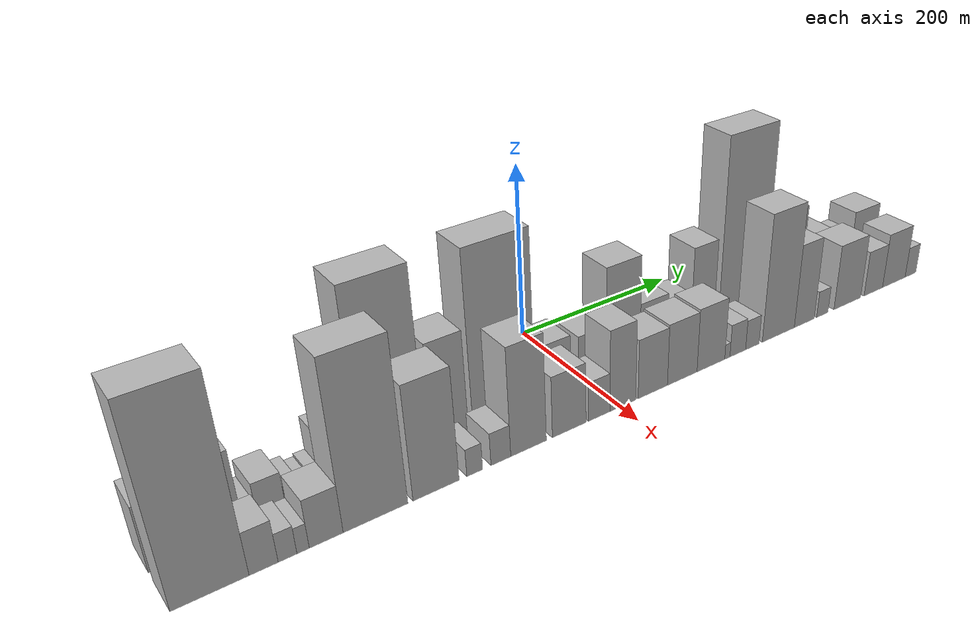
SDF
<sdf version="1.6">
 <world name="default">
  <scene>
   <sky><clouds><speed>12</speed></clouds></sky>
   <ambient>0.4 0.4 0.4 1</ambient>
   <background>0.7 0.7 0.7 1</background>
   <shadows>1</shadows>
  </scene>
  <gravity>0 0 -9.8066</gravity>
  <magnetic_field>6e-06 2.3e-05 -4.2e-05</magnetic_field>
  <physics default="0" name="default_physics" type="ode">
   <ode>
    <solver>
     <type>quick</type>
     <iters>10</iters>
     <sor>1.0</sor>
     <use_dynamic_moi_rescaling>0</use_dynamic_moi_rescaling>
    </solver>
    <constraints>
     <cfm>0</cfm>
     <erp>0.2</erp>
     <contact_max_correcting_vel>100</contact_max_correcting_vel>
     <contact_surface_layer>0.001</contact_surface_layer>
    </constraints>
   </ode>
   <max_step_size>0.004</max_step_size>
   <real_time_factor>1</real_time_factor>
   <real_time_update_rate>250</real_time_update_rate>
  </physics>
  <light name="sun" type="directional">
   <pose>0 0 10 0 0 0</pose>
   <diffuse>0.8 0.8 0.8 1</diffuse>
   <specular>0.2 0.2 0.2 1</specular>
   <attenuation>
    <range>1000</range>
    <constant>0.9</constant>
    <linear>0.01</linear>
    <quadratic>0.001</quadratic>
   </attenuation>
   <direction>-0.5 0.1 -0.9</direction>
  </light>
  <model name="building_1">
   <static>1</static>
   <pose>100.0000 -426.0865 0 0.000000 0.000000 0.000000</pose>
   <link name="link">
    <pose>0 0 34.50 0 0 0</pose>
    <collision name="collision"><geometry><box><size>40.0000 35.8269 69.0000</size></box></geometry></collision>
    <visual name="visual">
     <cast_shadows>0</cast_shadows>
     <geometry><box><size>40.0000 35.8269 69.0000</size></box></geometry>
     <material>
      <script>
       <uri>model://HANNAS_wall/materials/scripts</uri>
       <uri>model://HANNAS_wall/materials/textures</uri>
       <name>vrc/HANNAS_wall</name>
      </script>
     </material>
    </visual>
   </link>
  </model>
  <model name="building_2">
   <static>1</static>
   <pose>100.0000 -385.9030 0 0.000000 0.000000 0.000000</pose>
   <link name="link">
    <pose>0 0 43.50 0 0 0</pose>
    <collision name="collision"><geometry><box><size>40.0000 44.5402 87.0000</size></box></geometry></collision>
    <visual name="visual">
     <cast_shadows>0</cast_shadows>
     <geometry><box><size>40.0000 44.5402 87.0000</size></box></geometry>
     <material>
      <script>
       <uri>model://HANNAS_wall/materials/scripts</uri>
       <uri>model://HANNAS_wall/materials/textures</uri>
       <name>vrc/HANNAS_wall</name>
      </script>
     </material>
    </visual>
   </link>
  </model>
  <model name="building_3">
   <static>1</static>
   <pose>100.0000 -357.4554 0 0.000000 0.000000 0.000000</pose>
   <link name="link">
    <pose>0 0 13.50 0 0 0</pose>
    <collision name="collision"><geometry><box><size>40.0000 12.3551 27.0000</size></box></geometry></collision>
    <visual name="visual">
     <cast_shadows>0</cast_shadows>
     <geometry><box><size>40.0000 12.3551 27.0000</size></box></geometry>
     <material>
      <script>
       <uri>model://HANNAS_wall/materials/scripts</uri>
       <uri>model://HANNAS_wall/materials/textures</uri>
       <name>vrc/HANNAS_wall</name>
      </script>
     </material>
    </visual>
   </link>
  </model>
  <model name="building_4">
   <static>1</static>
   <pose>100.0000 -338.4898 0 0.000000 0.000000 0.000000</pose>
   <link name="link">
    <pose>0 0 22.50 0 0 0</pose>
    <collision name="collision"><geometry><box><size>40.0000 25.5759 45.0000</size></box></geometry></collision>
    <visual name="visual">
     <cast_shadows>0</cast_shadows>
     <geometry><box><size>40.0000 25.5759 45.0000</size></box></geometry>
     <material>
      <script>
       <uri>model://HANNAS_wall/materials/scripts</uri>
       <uri>model://HANNAS_wall/materials/textures</uri>
       <name>vrc/HANNAS_wall</name>
      </script>
     </material>
    </visual>
   </link>
  </model>
  <model name="building_5">
   <static>1</static>
   <pose>100.0000 -318.1940 0 0.000000 0.000000 0.000000</pose>
   <link name="link">
    <pose>0 0 15.00 0 0 0</pose>
    <collision name="collision"><geometry><box><size>40.0000 15.0158 30.0000</size></box></geometry></collision>
    <visual name="visual">
     <cast_shadows>0</cast_shadows>
     <geometry><box><size>40.0000 15.0158 30.0000</size></box></geometry>
     <material>
      <script>
       <uri>model://HANNAS_wall/materials/scripts</uri>
       <uri>model://HANNAS_wall/materials/textures</uri>
       <name>vrc/HANNAS_wall</name>
      </script>
     </material>
    </visual>
   </link>
  </model>
  <model name="building_6">
   <static>1</static>
   <pose>100.0000 -304.9111 0 0.000000 0.000000 0.000000</pose>
   <link name="link">
    <pose>0 0 12.00 0 0 0</pose>
    <collision name="collision"><geometry><box><size>40.0000 11.5500 24.0000</size></box></geometry></collision>
    <visual name="visual">
     <cast_shadows>0</cast_shadows>
     <geometry><box><size>40.0000 11.5500 24.0000</size></box></geometry>
     <material>
      <script>
       <uri>model://HANNAS_wall/materials/scripts</uri>
       <uri>model://HANNAS_wall/materials/textures</uri>
       <name>vrc/HANNAS_wall</name>
      </script>
     </material>
    </visual>
   </link>
  </model>
  <model name="building_7">
   <static>1</static>
   <pose>100.0000 -293.5560 0 0.000000 0.000000 0.000000</pose>
   <link name="link">
    <pose>0 0 13.50 0 0 0</pose>
    <collision name="collision"><geometry><box><size>40.0000 11.1602 27.0000</size></box></geometry></collision>
    <visual name="visual">
     <cast_shadows>0</cast_shadows>
     <geometry><box><size>40.0000 11.1602 27.0000</size></box></geometry>
     <material>
      <script>
       <uri>model://HANNAS_wall/materials/scripts</uri>
       <uri>model://HANNAS_wall/materials/textures</uri>
       <name>vrc/HANNAS_wall</name>
      </script>
     </material>
    </visual>
   </link>
  </model>
  <model name="building_8">
   <static>1</static>
   <pose>100.0000 -270.8643 0 0.000000 0.000000 0.000000</pose>
   <link name="link">
    <pose>0 0 31.50 0 0 0</pose>
    <collision name="collision"><geometry><box><size>40.0000 34.2231 63.0000</size></box></geometry></collision>
    <visual name="visual">
     <cast_shadows>0</cast_shadows>
     <geometry><box><size>40.0000 34.2231 63.0000</size></box></geometry>
     <material>
      <script>
       <uri>model://HANNAS_wall/materials/scripts</uri>
       <uri>model://HANNAS_wall/materials/textures</uri>
       <name>vrc/HANNAS_wall</name>
      </script>
     </material>
    </visual>
   </link>
  </model>
  <model name="building_9">
   <static>1</static>
   <pose>100.0000 -221.0748 0 0.000000 0.000000 0.000000</pose>
   <link name="link">
    <pose>0 0 100.50 0 0 0</pose>
    <collision name="collision"><geometry><box><size>40.0000 65.3559 201.0000</size></box></geometry></collision>
    <visual name="visual">
     <cast_shadows>0</cast_shadows>
     <geometry><box><size>40.0000 65.3559 201.0000</size></box></geometry>
     <material>
      <script>
       <uri>model://HANNAS_wall/materials/scripts</uri>
       <uri>model://HANNAS_wall/materials/textures</uri>
       <name>vrc/HANNAS_wall</name>
      </script>
     </material>
    </visual>
   </link>
  </model>
  <model name="building_10">
   <static>1</static>
   <pose>100.0000 -162.0557 0 0.000000 0.000000 0.000000</pose>
   <link name="link">
    <pose>0 0 58.50 0 0 0</pose>
    <collision name="collision"><geometry><box><size>40.0000 38.6823 117.0000</size></box></geometry></collision>
    <visual name="visual">
     <cast_shadows>0</cast_shadows>
     <geometry><box><size>40.0000 38.6823 117.0000</size></box></geometry>
     <material>
      <script>
       <uri>model://HANNAS_wall/materials/scripts</uri>
       <uri>model://HANNAS_wall/materials/textures</uri>
       <name>vrc/HANNAS_wall</name>
      </script>
     </material>
    </visual>
   </link>
  </model>
  <model name="building_11">
   <static>1</static>
   <pose>100.0000 -101.9497 0 0.000000 0.000000 0.000000</pose>
   <link name="link">
    <pose>0 0 99.00 0 0 0</pose>
    <collision name="collision"><geometry><box><size>40.0000 71.5297 198.0000</size></box></geometry></collision>
    <visual name="visual">
     <cast_shadows>0</cast_shadows>
     <geometry><box><size>40.0000 71.5297 198.0000</size></box></geometry>
     <material>
      <script>
       <uri>model://HANNAS_wall/materials/scripts</uri>
       <uri>model://HANNAS_wall/materials/textures</uri>
       <name>vrc/HANNAS_wall</name>
      </script>
     </material>
    </visual>
   </link>
  </model>
  <model name="building_12">
   <static>1</static>
   <pose>100.0000 -39.8804 0 0.000000 0.000000 0.000000</pose>
   <link name="link">
    <pose>0 0 33.00 0 0 0</pose>
    <collision name="collision"><geometry><box><size>40.0000 34.6090 66.0000</size></box></geometry></collision>
    <visual name="visual">
     <cast_shadows>0</cast_shadows>
     <geometry><box><size>40.0000 34.6090 66.0000</size></box></geometry>
     <material>
      <script>
       <uri>model://HANNAS_wall/materials/scripts</uri>
       <uri>model://HANNAS_wall/materials/textures</uri>
       <name>vrc/HANNAS_wall</name>
      </script>
     </material>
    </visual>
   </link>
  </model>
  <model name="building_13">
   <static>1</static>
   <pose>100.0000 4.9502 0 0.000000 0.000000 0.000000</pose>
   <link name="link">
    <pose>0 0 30.00 0 0 0</pose>
    <collision name="collision"><geometry><box><size>40.0000 35.0523 60.0000</size></box></geometry></collision>
    <visual name="visual">
     <cast_shadows>0</cast_shadows>
     <geometry><box><size>40.0000 35.0523 60.0000</size></box></geometry>
     <material>
      <script>
       <uri>model://HANNAS_wall/materials/scripts</uri>
       <uri>model://HANNAS_wall/materials/textures</uri>
       <name>vrc/HANNAS_wall</name>
      </script>
     </material>
    </visual>
   </link>
  </model>
  <model name="building_14">
   <static>1</static>
   <pose>100.0000 44.7409 0 0.000000 0.000000 0.000000</pose>
   <link name="link">
    <pose>0 0 63.00 0 0 0</pose>
    <collision name="collision"><geometry><box><size>40.0000 44.5290 126.0000</size></box></geometry></collision>
    <visual name="visual">
     <cast_shadows>0</cast_shadows>
     <geometry><box><size>40.0000 44.5290 126.0000</size></box></geometry>
     <material>
      <script>
       <uri>model://HANNAS_wall/materials/scripts</uri>
       <uri>model://HANNAS_wall/materials/textures</uri>
       <name>vrc/HANNAS_wall</name>
      </script>
     </material>
    </visual>
   </link>
  </model>
  <model name="building_15">
   <static>1</static>
   <pose>100.0000 85.7676 0 0.000000 0.000000 0.000000</pose>
   <link name="link">
    <pose>0 0 34.50 0 0 0</pose>
    <collision name="collision"><geometry><box><size>40.0000 37.5246 69.0000</size></box></geometry></collision>
    <visual name="visual">
     <cast_shadows>0</cast_shadows>
     <geometry><box><size>40.0000 37.5246 69.0000</size></box></geometry>
     <material>
      <script>
       <uri>model://HANNAS_wall/materials/scripts</uri>
       <uri>model://HANNAS_wall/materials/textures</uri>
       <name>vrc/HANNAS_wall</name>
      </script>
     </material>
    </visual>
   </link>
  </model>
  <model name="building_16">
   <static>1</static>
   <pose>100.0000 123.3544 0 0.000000 0.000000 0.000000</pose>
   <link name="link">
    <pose>0 0 28.50 0 0 0</pose>
    <collision name="collision"><geometry><box><size>40.0000 29.6488 57.0000</size></box></geometry></collision>
    <visual name="visual">
     <cast_shadows>0</cast_shadows>
     <geometry><box><size>40.0000 29.6488 57.0000</size></box></geometry>
     <material>
      <script>
       <uri>model://HANNAS_wall/materials/scripts</uri>
       <uri>model://HANNAS_wall/materials/textures</uri>
       <name>vrc/HANNAS_wall</name>
      </script>
     </material>
    </visual>
   </link>
  </model>
  <model name="building_17">
   <static>1</static>
   <pose>100.0000 155.0574 0 0.000000 0.000000 0.000000</pose>
   <link name="link">
    <pose>0 0 55.50 0 0 0</pose>
    <collision name="collision"><geometry><box><size>40.0000 33.7574 111.0000</size></box></geometry></collision>
    <visual name="visual">
     <cast_shadows>0</cast_shadows>
     <geometry><box><size>40.0000 33.7574 111.0000</size></box></geometry>
     <material>
      <script>
       <uri>model://HANNAS_wall/materials/scripts</uri>
       <uri>model://HANNAS_wall/materials/textures</uri>
       <name>vrc/HANNAS_wall</name>
      </script>
     </material>
    </visual>
   </link>
  </model>
  <model name="building_18">
   <static>1</static>
   <pose>100.0000 213.8398 0 0.000000 0.000000 0.000000</pose>
   <link name="link">
    <pose>0 0 112.50 0 0 0</pose>
    <collision name="collision"><geometry><box><size>40.0000 69.8074 225.0000</size></box></geometry></collision>
    <visual name="visual">
     <cast_shadows>0</cast_shadows>
     <geometry><box><size>40.0000 69.8074 225.0000</size></box></geometry>
     <material>
      <script>
       <uri>model://HANNAS_wall/materials/scripts</uri>
       <uri>model://HANNAS_wall/materials/textures</uri>
       <name>vrc/HANNAS_wall</name>
      </script>
     </material>
    </visual>
   </link>
  </model>
  <model name="building_19">
   <static>1</static>
   <pose>100.0000 257.7126 0 0.000000 0.000000 0.000000</pose>
   <link name="link">
    <pose>0 0 15.00 0 0 0</pose>
    <collision name="collision"><geometry><box><size>40.0000 17.9382 30.0000</size></box></geometry></collision>
    <visual name="visual">
     <cast_shadows>0</cast_shadows>
     <geometry><box><size>40.0000 17.9382 30.0000</size></box></geometry>
     <material>
      <script>
       <uri>model://HANNAS_wall/materials/scripts</uri>
       <uri>model://HANNAS_wall/materials/textures</uri>
       <name>vrc/HANNAS_wall</name>
      </script>
     </material>
    </visual>
   </link>
  </model>
  <model name="building_20">
   <static>1</static>
   <pose>100.0000 289.8383 0 0.000000 0.000000 0.000000</pose>
   <link name="link">
    <pose>0 0 55.50 0 0 0</pose>
    <collision name="collision"><geometry><box><size>40.0000 38.3132 111.0000</size></box></geometry></collision>
    <visual name="visual">
     <cast_shadows>0</cast_shadows>
     <geometry><box><size>40.0000 38.3132 111.0000</size></box></geometry>
     <material>
      <script>
       <uri>model://HANNAS_wall/materials/scripts</uri>
       <uri>model://HANNAS_wall/materials/textures</uri>
       <name>vrc/HANNAS_wall</name>
      </script>
     </material>
    </visual>
   </link>
  </model>
  <model name="building_21">
   <static>1</static>
   <pose>100.0000 334.4318 0 0.000000 0.000000 0.000000</pose>
   <link name="link">
    <pose>0 0 34.50 0 0 0</pose>
    <collision name="collision"><geometry><box><size>40.0000 40.8740 69.0000</size></box></geometry></collision>
    <visual name="visual">
     <cast_shadows>0</cast_shadows>
     <geometry><box><size>40.0000 40.8740 69.0000</size></box></geometry>
     <material>
      <script>
       <uri>model://HANNAS_wall/materials/scripts</uri>
       <uri>model://HANNAS_wall/materials/textures</uri>
       <name>vrc/HANNAS_wall</name>
      </script>
     </material>
    </visual>
   </link>
  </model>
  <model name="building_22">
   <static>1</static>
   <pose>100.0000 378.5405 0 0.000000 0.000000 0.000000</pose>
   <link name="link">
    <pose>0 0 27.00 0 0 0</pose>
    <collision name="collision"><geometry><box><size>40.0000 29.3434 54.0000</size></box></geometry></collision>
    <visual name="visual">
     <cast_shadows>0</cast_shadows>
     <geometry><box><size>40.0000 29.3434 54.0000</size></box></geometry>
     <material>
      <script>
       <uri>model://HANNAS_wall/materials/scripts</uri>
       <uri>model://HANNAS_wall/materials/textures</uri>
       <name>vrc/HANNAS_wall</name>
      </script>
     </material>
    </visual>
   </link>
  </model>
  <model name="building_23">
   <static>1</static>
   <pose>100.0000 414.9408 0 0.000000 0.000000 0.000000</pose>
   <link name="link">
    <pose>0 0 39.00 0 0 0</pose>
    <collision name="collision"><geometry><box><size>40.0000 43.4571 78.0000</size></box></geometry></collision>
    <visual name="visual">
     <cast_shadows>0</cast_shadows>
     <geometry><box><size>40.0000 43.4571 78.0000</size></box></geometry>
     <material>
      <script>
       <uri>model://HANNAS_wall/materials/scripts</uri>
       <uri>model://HANNAS_wall/materials/textures</uri>
       <name>vrc/HANNAS_wall</name>
      </script>
     </material>
    </visual>
   </link>
  </model>
  <model name="building_24">
   <static>1</static>
   <pose>100.0000 440.6839 0 0.000000 0.000000 0.000000</pose>
   <link name="link">
    <pose>0 0 9.00 0 0 0</pose>
    <collision name="collision"><geometry><box><size>40.0000 8.0292 18.0000</size></box></geometry></collision>
    <visual name="visual">
     <cast_shadows>0</cast_shadows>
     <geometry><box><size>40.0000 8.0292 18.0000</size></box></geometry>
     <material>
      <script>
       <uri>model://HANNAS_wall/materials/scripts</uri>
       <uri>model://HANNAS_wall/materials/textures</uri>
       <name>vrc/HANNAS_wall</name>
      </script>
     </material>
    </visual>
   </link>
  </model>
  <model name="building_25">
   <static>1</static>
   <pose>152.0000 -412.1984 0 0.000000 0.000000 0.000000</pose>
   <link name="link">
    <pose>0 0 100.50 0 0 0</pose>
    <collision name="collision"><geometry><box><size>40.0000 63.6033 201.0000</size></box></geometry></collision>
    <visual name="visual">
     <cast_shadows>0</cast_shadows>
     <geometry><box><size>40.0000 63.6033 201.0000</size></box></geometry>
     <material>
      <script>
       <uri>model://HANNAS_wall/materials/scripts</uri>
       <uri>model://HANNAS_wall/materials/textures</uri>
       <name>vrc/HANNAS_wall</name>
      </script>
     </material>
    </visual>
   </link>
  </model>
  <model name="building_26">
   <static>1</static>
   <pose>152.0000 -368.0824 0 0.000000 0.000000 0.000000</pose>
   <link name="link">
    <pose>0 0 22.50 0 0 0</pose>
    <collision name="collision"><geometry><box><size>40.0000 24.6286 45.0000</size></box></geometry></collision>
    <visual name="visual">
     <cast_shadows>0</cast_shadows>
     <geometry><box><size>40.0000 24.6286 45.0000</size></box></geometry>
     <material>
      <script>
       <uri>model://HANNAS_wall/materials/scripts</uri>
       <uri>model://HANNAS_wall/materials/textures</uri>
       <name>vrc/HANNAS_wall</name>
      </script>
     </material>
    </visual>
   </link>
  </model>
  <model name="building_27">
   <static>1</static>
   <pose>152.0000 -347.6256 0 0.000000 0.000000 0.000000</pose>
   <link name="link">
    <pose>0 0 15.00 0 0 0</pose>
    <collision name="collision"><geometry><box><size>40.0000 16.2850 30.0000</size></box></geometry></collision>
    <visual name="visual">
     <cast_shadows>0</cast_shadows>
     <geometry><box><size>40.0000 16.2850 30.0000</size></box></geometry>
     <material>
      <script>
       <uri>model://HANNAS_wall/materials/scripts</uri>
       <uri>model://HANNAS_wall/materials/textures</uri>
       <name>vrc/HANNAS_wall</name>
      </script>
     </material>
    </visual>
   </link>
  </model>
  <model name="building_28">
   <static>1</static>
   <pose>152.0000 -334.0634 0 0.000000 0.000000 0.000000</pose>
   <link name="link">
    <pose>0 0 13.50 0 0 0</pose>
    <collision name="collision"><geometry><box><size>40.0000 10.8394 27.0000</size></box></geometry></collision>
    <visual name="visual">
     <cast_shadows>0</cast_shadows>
     <geometry><box><size>40.0000 10.8394 27.0000</size></box></geometry>
     <material>
      <script>
       <uri>model://HANNAS_wall/materials/scripts</uri>
       <uri>model://HANNAS_wall/materials/textures</uri>
       <name>vrc/HANNAS_wall</name>
      </script>
     </material>
    </visual>
   </link>
  </model>
  <model name="building_29">
   <static>1</static>
   <pose>152.0000 -313.3480 0 0.000000 0.000000 0.000000</pose>
   <link name="link">
    <pose>0 0 25.50 0 0 0</pose>
    <collision name="collision"><geometry><box><size>40.0000 30.5914 51.0000</size></box></geometry></collision>
    <visual name="visual">
     <cast_shadows>0</cast_shadows>
     <geometry><box><size>40.0000 30.5914 51.0000</size></box></geometry>
     <material>
      <script>
       <uri>model://HANNAS_wall/materials/scripts</uri>
       <uri>model://HANNAS_wall/materials/textures</uri>
       <name>vrc/HANNAS_wall</name>
      </script>
     </material>
    </visual>
   </link>
  </model>
  <model name="building_30">
   <static>1</static>
   <pose>152.0000 -267.3027 0 0.000000 0.000000 0.000000</pose>
   <link name="link">
    <pose>0 0 88.50 0 0 0</pose>
    <collision name="collision"><geometry><box><size>40.0000 61.4992 177.0000</size></box></geometry></collision>
    <visual name="visual">
     <cast_shadows>0</cast_shadows>
     <geometry><box><size>40.0000 61.4992 177.0000</size></box></geometry>
     <material>
      <script>
       <uri>model://HANNAS_wall/materials/scripts</uri>
       <uri>model://HANNAS_wall/materials/textures</uri>
       <name>vrc/HANNAS_wall</name>
      </script>
     </material>
    </visual>
   </link>
  </model>
  <model name="building_31">
   <static>1</static>
   <pose>152.0000 -208.0971 0 0.000000 0.000000 0.000000</pose>
   <link name="link">
    <pose>0 0 61.50 0 0 0</pose>
    <collision name="collision"><geometry><box><size>40.0000 46.9122 123.0000</size></box></geometry></collision>
    <visual name="visual">
     <cast_shadows>0</cast_shadows>
     <geometry><box><size>40.0000 46.9122 123.0000</size></box></geometry>
     <material>
      <script>
       <uri>model://HANNAS_wall/materials/scripts</uri>
       <uri>model://HANNAS_wall/materials/textures</uri>
       <name>vrc/HANNAS_wall</name>
      </script>
     </material>
    </visual>
   </link>
  </model>
  <model name="building_32">
   <static>1</static>
   <pose>152.0000 -168.2520 0 0.000000 0.000000 0.000000</pose>
   <link name="link">
    <pose>0 0 15.00 0 0 0</pose>
    <collision name="collision"><geometry><box><size>40.0000 16.7779 30.0000</size></box></geometry></collision>
    <visual name="visual">
     <cast_shadows>0</cast_shadows>
     <geometry><box><size>40.0000 16.7779 30.0000</size></box></geometry>
     <material>
      <script>
       <uri>model://HANNAS_wall/materials/scripts</uri>
       <uri>model://HANNAS_wall/materials/textures</uri>
       <name>vrc/HANNAS_wall</name>
      </script>
     </material>
    </visual>
   </link>
  </model>
  <model name="building_33">
   <static>1</static>
   <pose>152.0000 -140.0718 0 0.000000 0.000000 0.000000</pose>
   <link name="link">
    <pose>0 0 18.00 0 0 0</pose>
    <collision name="collision"><geometry><box><size>40.0000 21.5826 36.0000</size></box></geometry></collision>
    <visual name="visual">
     <cast_shadows>0</cast_shadows>
     <geometry><box><size>40.0000 21.5826 36.0000</size></box></geometry>
     <material>
      <script>
       <uri>model://HANNAS_wall/materials/scripts</uri>
       <uri>model://HANNAS_wall/materials/textures</uri>
       <name>vrc/HANNAS_wall</name>
      </script>
     </material>
    </visual>
   </link>
  </model>
  <model name="building_34">
   <static>1</static>
   <pose>152.0000 -109.2044 0 0.000000 0.000000 0.000000</pose>
   <link name="link">
    <pose>0 0 60.00 0 0 0</pose>
    <collision name="collision"><geometry><box><size>40.0000 40.1522 120.0000</size></box></geometry></collision>
    <visual name="visual">
     <cast_shadows>0</cast_shadows>
     <geometry><box><size>40.0000 40.1522 120.0000</size></box></geometry>
     <material>
      <script>
       <uri>model://HANNAS_wall/materials/scripts</uri>
       <uri>model://HANNAS_wall/materials/textures</uri>
       <name>vrc/HANNAS_wall</name>
      </script>
     </material>
    </visual>
   </link>
  </model>
  <model name="building_35">
   <static>1</static>
   <pose>152.0000 -62.2187 0 0.000000 0.000000 0.000000</pose>
   <link name="link">
    <pose>0 0 34.50 0 0 0</pose>
    <collision name="collision"><geometry><box><size>40.0000 39.8193 69.0000</size></box></geometry></collision>
    <visual name="visual">
     <cast_shadows>0</cast_shadows>
     <geometry><box><size>40.0000 39.8193 69.0000</size></box></geometry>
     <material>
      <script>
       <uri>model://HANNAS_wall/materials/scripts</uri>
       <uri>model://HANNAS_wall/materials/textures</uri>
       <name>vrc/HANNAS_wall</name>
      </script>
     </material>
    </visual>
   </link>
  </model>
  <model name="building_36">
   <static>1</static>
   <pose>152.0000 -26.1796 0 0.000000 0.000000 0.000000</pose>
   <link name="link">
    <pose>0 0 22.50 0 0 0</pose>
    <collision name="collision"><geometry><box><size>40.0000 26.2588 45.0000</size></box></geometry></collision>
    <visual name="visual">
     <cast_shadows>0</cast_shadows>
     <geometry><box><size>40.0000 26.2588 45.0000</size></box></geometry>
     <material>
      <script>
       <uri>model://HANNAS_wall/materials/scripts</uri>
       <uri>model://HANNAS_wall/materials/textures</uri>
       <name>vrc/HANNAS_wall</name>
      </script>
     </material>
    </visual>
   </link>
  </model>
  <model name="building_37">
   <static>1</static>
   <pose>152.0000 3.2411 0 0.000000 0.000000 0.000000</pose>
   <link name="link">
    <pose>0 0 46.50 0 0 0</pose>
    <collision name="collision"><geometry><box><size>40.0000 32.5826 93.0000</size></box></geometry></collision>
    <visual name="visual">
     <cast_shadows>0</cast_shadows>
     <geometry><box><size>40.0000 32.5826 93.0000</size></box></geometry>
     <material>
      <script>
       <uri>model://HANNAS_wall/materials/scripts</uri>
       <uri>model://HANNAS_wall/materials/textures</uri>
       <name>vrc/HANNAS_wall</name>
      </script>
     </material>
    </visual>
   </link>
  </model>
  <model name="building_38">
   <static>1</static>
   <pose>152.0000 41.7942 0 0.000000 0.000000 0.000000</pose>
   <link name="link">
    <pose>0 0 34.50 0 0 0</pose>
    <collision name="collision"><geometry><box><size>40.0000 38.5236 69.0000</size></box></geometry></collision>
    <visual name="visual">
     <cast_shadows>0</cast_shadows>
     <geometry><box><size>40.0000 38.5236 69.0000</size></box></geometry>
     <material>
      <script>
       <uri>model://HANNAS_wall/materials/scripts</uri>
       <uri>model://HANNAS_wall/materials/textures</uri>
       <name>vrc/HANNAS_wall</name>
      </script>
     </material>
    </visual>
   </link>
  </model>
  <model name="building_39">
   <static>1</static>
   <pose>152.0000 81.2399 0 0.000000 0.000000 0.000000</pose>
   <link name="link">
    <pose>0 0 36.00 0 0 0</pose>
    <collision name="collision"><geometry><box><size>40.0000 40.3678 72.0000</size></box></geometry></collision>
    <visual name="visual">
     <cast_shadows>0</cast_shadows>
     <geometry><box><size>40.0000 40.3678 72.0000</size></box></geometry>
     <material>
      <script>
       <uri>model://HANNAS_wall/materials/scripts</uri>
       <uri>model://HANNAS_wall/materials/textures</uri>
       <name>vrc/HANNAS_wall</name>
      </script>
     </material>
    </visual>
   </link>
  </model>
  <model name="building_40">
   <static>1</static>
   <pose>152.0000 121.0293 0 0.000000 0.000000 0.000000</pose>
   <link name="link">
    <pose>0 0 37.50 0 0 0</pose>
    <collision name="collision"><geometry><box><size>40.0000 39.2111 75.0000</size></box></geometry></collision>
    <visual name="visual">
     <cast_shadows>0</cast_shadows>
     <geometry><box><size>40.0000 39.2111 75.0000</size></box></geometry>
     <material>
      <script>
       <uri>model://HANNAS_wall/materials/scripts</uri>
       <uri>model://HANNAS_wall/materials/textures</uri>
       <name>vrc/HANNAS_wall</name>
      </script>
     </material>
    </visual>
   </link>
  </model>
  <model name="building_41">
   <static>1</static>
   <pose>152.0000 144.3680 0 0.000000 0.000000 0.000000</pose>
   <link name="link">
    <pose>0 0 9.00 0 0 0</pose>
    <collision name="collision"><geometry><box><size>40.0000 7.4662 18.0000</size></box></geometry></collision>
    <visual name="visual">
     <cast_shadows>0</cast_shadows>
     <geometry><box><size>40.0000 7.4662 18.0000</size></box></geometry>
     <material>
      <script>
       <uri>model://HANNAS_wall/materials/scripts</uri>
       <uri>model://HANNAS_wall/materials/textures</uri>
       <name>vrc/HANNAS_wall</name>
      </script>
     </material>
    </visual>
   </link>
  </model>
  <model name="building_42">
   <static>1</static>
   <pose>152.0000 159.5786 0 0.000000 0.000000 0.000000</pose>
   <link name="link">
    <pose>0 0 19.50 0 0 0</pose>
    <collision name="collision"><geometry><box><size>40.0000 22.9551 39.0000</size></box></geometry></collision>
    <visual name="visual">
     <cast_shadows>0</cast_shadows>
     <geometry><box><size>40.0000 22.9551 39.0000</size></box></geometry>
     <material>
      <script>
       <uri>model://HANNAS_wall/materials/scripts</uri>
       <uri>model://HANNAS_wall/materials/textures</uri>
       <name>vrc/HANNAS_wall</name>
      </script>
     </material>
    </visual>
   </link>
  </model>
  <model name="building_43">
   <static>1</static>
   <pose>152.0000 181.0502 0 0.000000 0.000000 0.000000</pose>
   <link name="link">
    <pose>0 0 18.00 0 0 0</pose>
    <collision name="collision"><geometry><box><size>40.0000 19.9882 36.0000</size></box></geometry></collision>
    <visual name="visual">
     <cast_shadows>0</cast_shadows>
     <geometry><box><size>40.0000 19.9882 36.0000</size></box></geometry>
     <material>
      <script>
       <uri>model://HANNAS_wall/materials/scripts</uri>
       <uri>model://HANNAS_wall/materials/textures</uri>
       <name>vrc/HANNAS_wall</name>
      </script>
     </material>
    </visual>
   </link>
  </model>
  <model name="building_44">
   <static>1</static>
   <pose>152.0000 220.8196 0 0.000000 0.000000 0.000000</pose>
   <link name="link">
    <pose>0 0 76.50 0 0 0</pose>
    <collision name="collision"><geometry><box><size>40.0000 49.5505 153.0000</size></box></geometry></collision>
    <visual name="visual">
     <cast_shadows>0</cast_shadows>
     <geometry><box><size>40.0000 49.5505 153.0000</size></box></geometry>
     <material>
      <script>
       <uri>model://HANNAS_wall/materials/scripts</uri>
       <uri>model://HANNAS_wall/materials/textures</uri>
       <name>vrc/HANNAS_wall</name>
      </script>
     </material>
    </visual>
   </link>
  </model>
  <model name="building_45">
   <static>1</static>
   <pose>152.0000 261.5684 0 0.000000 0.000000 0.000000</pose>
   <link name="link">
    <pose>0 0 51.00 0 0 0</pose>
    <collision name="collision"><geometry><box><size>40.0000 31.9472 102.0000</size></box></geometry></collision>
    <visual name="visual">
     <cast_shadows>0</cast_shadows>
     <geometry><box><size>40.0000 31.9472 102.0000</size></box></geometry>
     <material>
      <script>
       <uri>model://HANNAS_wall/materials/scripts</uri>
       <uri>model://HANNAS_wall/materials/textures</uri>
       <name>vrc/HANNAS_wall</name>
      </script>
     </material>
    </visual>
   </link>
  </model>
  <model name="building_46">
   <static>1</static>
   <pose>152.0000 290.8399 0 0.000000 0.000000 0.000000</pose>
   <link name="link">
    <pose>0 0 16.50 0 0 0</pose>
    <collision name="collision"><geometry><box><size>40.0000 18.5958 33.0000</size></box></geometry></collision>
    <visual name="visual">
     <cast_shadows>0</cast_shadows>
     <geometry><box><size>40.0000 18.5958 33.0000</size></box></geometry>
     <material>
      <script>
       <uri>model://HANNAS_wall/materials/scripts</uri>
       <uri>model://HANNAS_wall/materials/textures</uri>
       <name>vrc/HANNAS_wall</name>
      </script>
     </material>
    </visual>
   </link>
  </model>
  <model name="building_47">
   <static>1</static>
   <pose>152.0000 332.8288 0 0.000000 0.000000 0.000000</pose>
   <link name="link">
    <pose>0 0 40.50 0 0 0</pose>
    <collision name="collision"><geometry><box><size>40.0000 45.3821 81.0000</size></box></geometry></collision>
    <visual name="visual">
     <cast_shadows>0</cast_shadows>
     <geometry><box><size>40.0000 45.3821 81.0000</size></box></geometry>
     <material>
      <script>
       <uri>model://HANNAS_wall/materials/scripts</uri>
       <uri>model://HANNAS_wall/materials/textures</uri>
       <name>vrc/HANNAS_wall</name>
      </script>
     </material>
    </visual>
   </link>
  </model>
  <model name="building_48">
   <static>1</static>
   <pose>152.0000 377.8535 0 0.000000 0.000000 0.000000</pose>
   <link name="link">
    <pose>0 0 28.50 0 0 0</pose>
    <collision name="collision"><geometry><box><size>40.0000 32.6674 57.0000</size></box></geometry></collision>
    <visual name="visual">
     <cast_shadows>0</cast_shadows>
     <geometry><box><size>40.0000 32.6674 57.0000</size></box></geometry>
     <material>
      <script>
       <uri>model://HANNAS_wall/materials/scripts</uri>
       <uri>model://HANNAS_wall/materials/textures</uri>
       <name>vrc/HANNAS_wall</name>
      </script>
     </material>
    </visual>
   </link>
  </model>
  <model name="building_49">
   <static>1</static>
   <pose>152.0000 414.7850 0 0.000000 0.000000 0.000000</pose>
   <link name="link">
    <pose>0 0 34.50 0 0 0</pose>
    <collision name="collision"><geometry><box><size>40.0000 41.1956 69.0000</size></box></geometry></collision>
    <visual name="visual">
     <cast_shadows>0</cast_shadows>
     <geometry><box><size>40.0000 41.1956 69.0000</size></box></geometry>
     <material>
      <script>
       <uri>model://HANNAS_wall/materials/scripts</uri>
       <uri>model://HANNAS_wall/materials/textures</uri>
       <name>vrc/HANNAS_wall</name>
      </script>
     </material>
    </visual>
   </link>
  </model>
  <model name="building_50">
   <static>1</static>
   <pose>152.0000 445.3613 0 0.000000 0.000000 0.000000</pose>
   <link name="link">
    <pose>0 0 19.50 0 0 0</pose>
    <collision name="collision"><geometry><box><size>40.0000 19.9570 39.0000</size></box></geometry></collision>
    <visual name="visual">
     <cast_shadows>0</cast_shadows>
     <geometry><box><size>40.0000 19.9570 39.0000</size></box></geometry>
     <material>
      <script>
       <uri>model://HANNAS_wall/materials/scripts</uri>
       <uri>model://HANNAS_wall/materials/textures</uri>
       <name>vrc/HANNAS_wall</name>
      </script>
     </material>
    </visual>
   </link>
  </model>
 </world>
</sdf>
